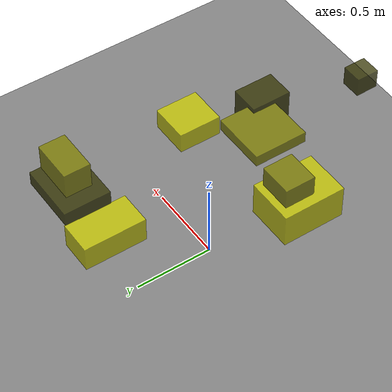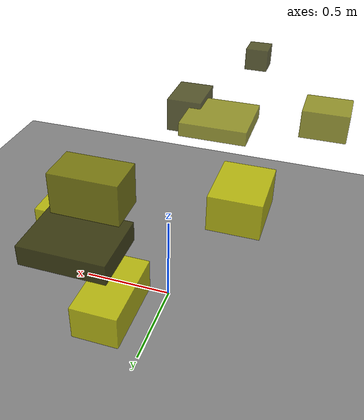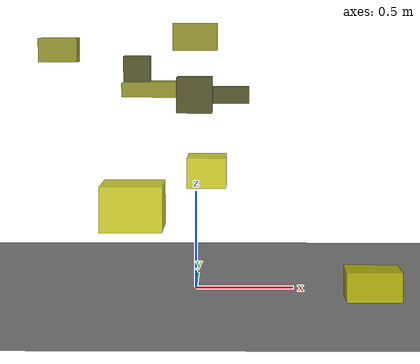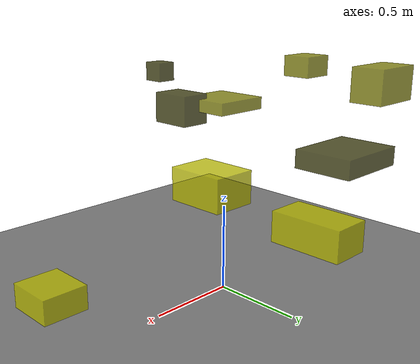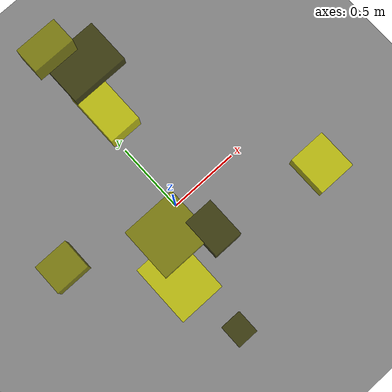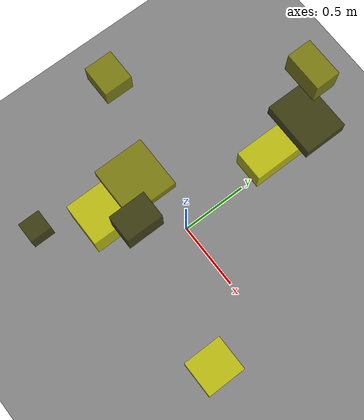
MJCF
<?xml version="1.0"?>
<mujoco model="obstacle_scene">
  <compiler angle="radian" coordinate="local"/>
  <option timestep="0.001" gravity="0 0 -9.81"/>

  <asset>
    <material name="obstacle_mat" rgba="0.8 0.8 0.0 0.8"/>
    <material name="ground_mat" rgba="0.5 0.5 0.5 1"/>
  </asset>

  <worldbody>
    <!-- Ground plane -->
    <geom name="ground" type="plane" size="3 3 0.1" material="ground_mat"/>

    <!-- Obstacles -->
    <body name="obstacle_0" pos="-0.255235 -0.824237 1.158892">
      <geom name="obs_0" type="box" size="0.060538 0.065479 0.058423" rgba="0.2 0.2 0.0 0.8"/>
    </body>
    <body name="obstacle_1" pos="-0.193341 -0.214749 1.037891">
      <geom name="obs_1" type="box" size="0.166204 0.160892 0.034885" rgba="0.5 0.5 0.0 0.8"/>
    </body>
    <body name="obstacle_2" pos="-0.304312 -0.399939 0.468072">
      <geom name="obs_2" type="box" size="0.153205 0.201408 0.111056" rgba="0.8 0.8 0.0 0.8"/>
    </body>
    <body name="obstacle_3" pos="0.098923 0.821264 0.962680">
      <geom name="obs_3" type="box" size="0.179489 0.139610 0.043478" rgba="0.2 0.2 0.0 0.8"/>
    </body>
    <body name="obstacle_4" pos="-0.704741 -0.000123 1.229217">
      <geom name="obs_4" type="box" size="0.098132 0.087726 0.061069" rgba="0.5 0.5 0.0 0.8"/>
    </body>
    <body name="obstacle_5" pos="0.044869 0.658208 0.548599">
      <geom name="obs_5" type="box" size="0.107102 0.194741 0.081567" rgba="0.8 0.8 0.0 0.8"/>
    </body>
    <body name="obstacle_6" pos="0.000949 -0.351236 1.015723">
      <geom name="obs_6" type="box" size="0.087912 0.119657 0.086257" rgba="0.2 0.2 0.0 0.8"/>
    </body>
    <body name="obstacle_7" pos="-0.025991 0.900949 1.286815">
      <geom name="obs_7" type="box" size="0.124799 0.076032 0.077201" rgba="0.5 0.5 0.0 0.8"/>
    </body>
    <body name="obstacle_8" pos="0.879633 -0.446605 0.089251">
      <geom name="obs_8" type="box" size="0.135215 0.145473 0.072533" rgba="0.8 0.8 0.0 0.8"/>
    </body>
  </worldbody>
</mujoco>
